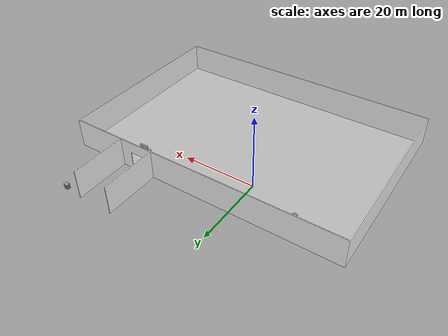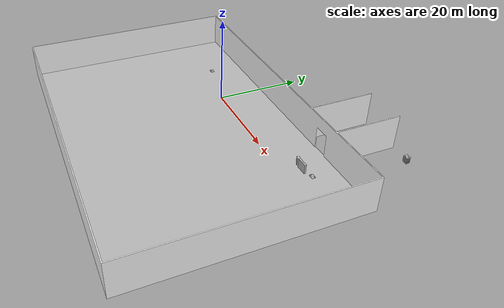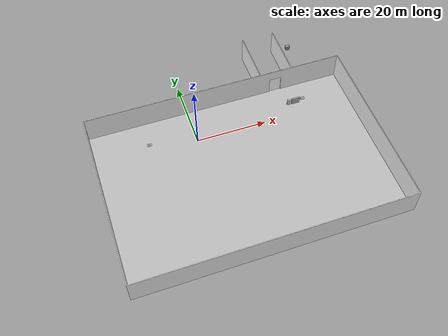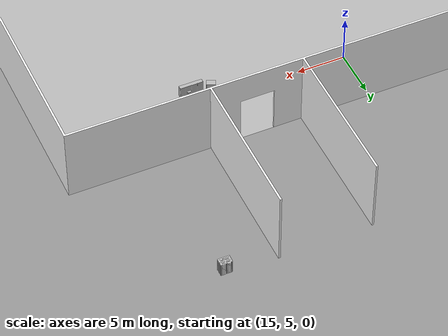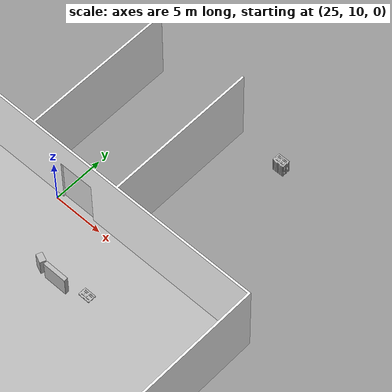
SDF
<sdf version="1.10">
 <world name="default">
  <gravity>0 0 -9.8000000000000007</gravity>
  <physics type="ode">
   <max_step_size>0.01</max_step_size>
   <real_time_update_rate>100</real_time_update_rate>
   <real_time_factor>1</real_time_factor>
  </physics>
  <plugin name="gz::sim::systems::Physics" filename="gz-sim-physics-system"/>
  <plugin name="gz::sim::systems::UserCommands" filename="gz-sim-user-commands-system"/>
  <plugin name="gz::sim::systems::SceneBroadcaster" filename="gz-sim-scene-broadcaster-system"/>
  <plugin name="gz::sim::systems::Sensors" filename="gz-sim-sensors-system">
   <render_engine>ogre2</render_engine>
  </plugin>
  <plugin name="gz::sim::systems::Imu" filename="gz-sim-imu-system"/>
  <plugin name="gz::sim::systems::Contact" filename="gz-sim-contact-system"/>
  <plugin name="gz::sim::systems::TriggeredPublisher" filename="gz-sim-triggered-publisher-system"/>
  <scene>
   <ambient>1 1 1 1</ambient>
   <background>0.300000012 0.699999988 0.899999976 1</background>
   <shadows>false</shadows>
   <grid>false</grid>
  </scene>
  <magnetic_field>5.5644999999999998e-06 2.2875799999999999e-05 -4.2388400000000002e-05</magnetic_field>
  <atmosphere type="adiabatic"/>
  <include>
   <static>1</static>
   <uri>model://concrete_ground</uri>
   <name>concrete_ground</name>
   <pose>8.8000000000000007 -14.4 0.00050000000000000001 0 0 0</pose>
  </include>
  <include>
   <static>1</static>
   <uri>model://factory</uri>
   <name>factory</name>
   <pose>1.3 -1.3999999999999999 0 0 0 0</pose>
  </include>
  <include>
   <static>1</static>
   <uri>model://electrical_box</uri>
   <name>electrical_box</name>
   <pose>31 4 0 0 0 3.1400000000000001</pose>
  </include>
  <include>
   <static>1</static>
   <uri>model://blue_cabinet</uri>
   <name>blue_cabinet</name>
   <pose>29 4.2599999999999998 0 0 0 -1.96</pose>
  </include>
  <include>
   <static>1</static>
   <uri>model://eur_pallet</uri>
   <name>pallet_group_pickup</name>
   <pose>-13.700000000000172 2.6000000000024257 -4.3715116473615661e-07 4.152909349755708e-08 2.958699848366306e-09 2.9219857872360464e-17</pose>
  </include>
  <include>
   <static>1</static>
   <uri>model://eur_pallet</uri>
   <name>pallet_group_dropoff</name>
   <pose>32.999999999999829 4.5000000000024256 -4.3715116469401709e-07 4.1529093391264352e-08 2.9586998560490375e-09 2.9114820965909643e-17</pose>
  </include>
  <include>
   <static>1</static>
   <uri>model://eur_pallet</uri>
   <name>pallet_stack2_n1</name>
   <pose>36.300000000000033 24.599999999999746 -3.6706068590536973e-06 4.1576641099852704e-07 2.9608989262484152e-08 6.5556212340355986e-16</pose>
  </include>
  <include>
   <static>1</static>
   <uri>model://eur_pallet</uri>
   <name>pallet_stack2_n2</name>
   <pose>36.300000004167991 24.5999999407865 0.14399041984560573 1.1648864492255313e-06 8.2993615811757163e-08 -6.0493878031625912e-11</pose>
  </include>
  <include>
   <static>1</static>
   <uri>model://eur_pallet</uri>
   <name>pallet_stack2_n3</name>
   <pose>36.300000015856746 24.59999977677268 0.28798544264464615 1.8281327184696251e-06 1.3023645235723331e-07 -5.1851002659399237e-11</pose>
  </include>
  <include>
   <static>1</static>
   <uri>model://eur_pallet</uri>
   <name>pallet_stack2_n4</name>
   <pose>36.300000033982933 24.59999952239902 0.43198018936065968 2.4130336791193994e-06 1.7190497546592542e-07 -4.3210224442971398e-11</pose>
  </include>
  <include>
   <static>1</static>
   <uri>model://eur_pallet</uri>
   <name>pallet_stack2_n5</name>
   <pose>36.300000057464835 24.599999192865855 0.57597624906531331 2.911325281084246e-06 2.0740315759753532e-07 -3.1400832557916565e-11</pose>
  </include>
  <include>
   <static>1</static>
   <uri>model://eur_pallet</uri>
   <name>pallet_stack2_n6</name>
   <pose>36.300000085191719 24.599998803807075 0.71997334672944946 3.3246275415267877e-06 2.3684749416394073e-07 -1.0319362736580056e-11</pose>
  </include>
  <include>
   <static>1</static>
   <uri>model://eur_pallet</uri>
   <name>pallet_stack2_n7</name>
   <pose>36.30000011604465 24.599998370843366 0.86397072005531539 3.6567051958537219e-06 2.6050533721739928e-07 7.9995338883992933e-12</pose>
  </include>
  <include>
   <static>1</static>
   <uri>model://eur_pallet</uri>
   <name>pallet_stack2_n8</name>
   <pose>36.300000148817993 24.599997910878887 1.0079690288686509 3.9046641297745717e-06 2.7817074753029887e-07 2.056759309082002e-11</pose>
  </include>
  <include>
   <static>1</static>
   <uri>model://eur_pallet</uri>
   <name>pallet_stack2_n9</name>
   <pose>36.300000182308196 24.599997440706929 1.1519674367542334 4.0714364742810299e-06 2.9005223052507442e-07 1.3840240703987145e-11</pose>
  </include>
  <include>
   <static>1</static>
   <uri>model://eur_pallet</uri>
   <name>pallet_stack2_n10</name>
   <pose>36.300000215257057 24.59999697800081 1.295966398199037 4.1547314714904098e-06 2.9598656179255095e-07 -9.9941771409685691e-12</pose>
  </include>
  <light name="sun" type="directional">
   <pose>0 0.10000000000000001 10 0 0 0</pose>
   <cast_shadows>false</cast_shadows>
   <intensity>1</intensity>
   <direction>0.10000000000000001 0.10000000000000001 -0.90000000000000002</direction>
   <diffuse>0.800000012 0.800000012 0.800000012 1</diffuse>
   <specular>0.200000003 0.200000003 0.200000003 1</specular>
   <attenuation>
    <range>1000</range>
    <linear>0.01</linear>
    <constant>0.90000000000000002</constant>
    <quadratic>0.001</quadratic>
   </attenuation>
   <spot><inner_angle>0</inner_angle><outer_angle>0</outer_angle><falloff>0</falloff></spot>
  </light>
 </world>
</sdf>

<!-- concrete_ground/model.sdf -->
<sdf version="1.7">
  <model name="concrete_ground" canonical_link="concrete_ground_link">
    <link name="concrete_ground">
      <visual name="visual">
        <pose>0 0 0 1.5708 0 0</pose>
        <geometry>
          <mesh>
            <uri>model://concrete_ground/meshes/concrete_ground.obj</uri>
            <scale>1 1 1</scale>
          </mesh>
        </geometry>
      </visual>
    </link>
  </model>
</sdf>

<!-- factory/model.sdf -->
<sdf version="1.8">
  <model name="factory">
    <plugin filename="gz-sim-label-system" name="gz::sim::systems::Label">
      <label>2</label>
    </plugin>
    <static>true</static>
    <link name="building">
      <visual name="visual">
        <geometry>
          <mesh>
            <uri>model://factory/meshes/factory_with_entrence.dae</uri>
          </mesh>
        </geometry>
      </visual>
      <collision name="collision">
        <geometry>
          <mesh>
            <uri>model://factory/meshes/factory_with_entrence.dae</uri>
          </mesh>
        </geometry>
      </collision>

    </link>
    <plugin name="gz::sim::systems::Label" filename="gz-sim-label-system">
      <label>2</label>
    </plugin>
  </model>
</sdf>

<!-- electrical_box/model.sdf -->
<sdf version="1.7">
  <model name="electrical_box" canonical_link="electrical_box_link">
    <link name="electrical_box_link">
      <visual name="visual">
        <pose>0 0 0 1.5708 0 0</pose>
        <geometry>
          <mesh>
            <uri>model://electrical_box/meshes/electrical_box.obj</uri>
            <scale>1 1 1</scale>
          </mesh>
        </geometry>
      </visual>

      <collision name="collision">
        <pose>0 0 0 1.5708 0 0</pose>
        <geometry>
          <mesh>
            <uri>model://electrical_box/meshes/electrical_box.obj</uri>
            <scale>1 1 1</scale>
          </mesh>
        </geometry>
      </collision>
    </link>
  </model>
</sdf>

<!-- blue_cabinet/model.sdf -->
<sdf version="1.7">
  <model name="blue_cabinet" canonical_link="blue_cabinet_link">
    <link name="blue_cabinet_link">
      <visual name="visual">
        <pose>0 0 0 1.5708 0 0</pose>
        <geometry>
          <mesh>
            <uri>model://blue_cabinet/meshes/blue_cabinet.obj</uri>
            <scale>1 1 1</scale>
          </mesh>
        </geometry>
      </visual>

      <collision name="collision">
        <pose>0 0 0 1.5708 0 0</pose>
        <geometry>
          <mesh>
            <uri>model://blue_cabinet/meshes/blue_cabinet.obj</uri>
            <scale>1 1 1</scale>
          </mesh>
        </geometry>
      </collision>
    </link>
  </model>
</sdf>

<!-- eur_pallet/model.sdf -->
<sdf version="1.9">
<model name="eur_pallet" canonical_link="node0_link">
  <link name="node0_link">
    <visual name="node0">
      <pose>0 0 0 0 0 0</pose>
      <geometry>
        <mesh>
          <uri>model://eur_pallet/meshes/textured_pallet.dae</uri>
          <scale>1.00000 1.00000 1.00000</scale>
        </mesh>
      </geometry>
    </visual>
  </link>

  <link name="collision_holder_1">
    <inertial>
      <inertia>
        <ixx>0.006</ixx>
        <ixy>0</ixy>
        <ixz>0</ixz>
        <iyy>0.435</iyy>
        <iyz>0</iyz>
        <izz>0.435</izz>
      </inertia>
      <pose>0.6 0.05 0.05 0 0 0</pose>
      <mass>3.6</mass>
    </inertial>
    <collision name="collision_holder_1">
      <pose>0.6 0.05 0.05 0.0 0.0 0.0</pose>
      <geometry>
        <box>
          <size>1.2 0.1 0.1</size>
        </box>
      </geometry>
      <surface>
      <friction>
        <ode>
          <mu>1</mu>
          <mu2>1</mu2>
          <slip1>0</slip1>
          <slip2>0</slip2>
        </ode>
      </friction>
      <contact>
        <ode>
          <soft_cfm>1e-5</soft_cfm>
          <soft_erp>0.2</soft_erp>
          <kp>1e+13</kp>
          <kd>1</kd>
          <max_vel>0.01</max_vel>
          <min_depth>0</min_depth>
        </ode>
      </contact>
      </surface>
    </collision>
  </link>

  <link name="collision_holder_2">
    <inertial>
      <inertia>
        <ixx>0.013496</ixx>
        <ixy>0</ixy>
        <ixz>0</ixz>
        <iyy>0.6308</iyy>
        <iyz>0</iyz>
        <izz>0.6355</izz>
      </inertia>
      <pose>0.6 0.4 0.05 0 0 0</pose>
      <mass>5.22</mass>
    </inertial>
    <collision name="collision_holder_2">
      <pose>0.6 0.4 0.05 0 0 0</pose>
      <geometry>
        <box>
          <size>1.2 0.145 0.1</size>
        </box>
      </geometry>
      <surface>
      <friction>
        <ode>
          <mu>1</mu>
          <mu2>1</mu2>
          <slip1>0</slip1>
          <slip2>0</slip2>
        </ode>
      </friction>
      <contact>
        <ode>
          <soft_cfm>1e-5</soft_cfm>
          <soft_erp>0.2</soft_erp>
          <kp>1e+13</kp>
          <kd>1</kd>
          <max_vel>0.01</max_vel>
          <min_depth>0</min_depth>
        </ode>
      </contact>
      </surface>

    </collision>
  </link>

  <link name="collision_holder_3">
    <inertial>
      <inertia>
        <ixx>0.006</ixx>
        <ixy>0</ixy>
        <ixz>0</ixz>
        <iyy>0.435</iyy>
        <iyz>0</iyz>
        <izz>0.435</izz>
      </inertia>
      <pose>0.6 0.75 0.05 0 0 0</pose>
      <mass>3.6</mass>
    </inertial>
    <collision name="collision_holder_3">
      <pose>0.6 0.75 0.05 0 0 0</pose>
      <geometry>
        <box>
          <size>1.2 0.1 0.1</size>
        </box>
      </geometry>
      <surface>
      <friction>
        <ode>
          <mu>1</mu>
          <mu2>1</mu2>
          <slip1>0</slip1>
          <slip2>0</slip2>
        </ode>
      </friction>
      <contact>
        <ode>
          <soft_cfm>1e-5</soft_cfm>
          <soft_erp>0.2</soft_erp>
          <kp>1e+13</kp>
          <kd>1</kd>
          <max_vel>0.01</max_vel>
          <min_depth>0</min_depth>
        </ode>
      </contact>
      </surface>

    </collision>
  </link>

  <link name="collision_holder_surface">
    <inertial>
      <inertia>
        <ixx>0.6779</ixx>
        <ixy>0</ixy>
        <ixz>0</ixz>
        <iyy>1.5227</iyy>
        <iyz>0</iyz>
        <izz>2.1965</izz>
      </inertia>
      <pose>0.6 0.4 0.122 0 0 0</pose>
      <mass>12.672</mass>
    </inertial>
    <collision name="collision_holder_surface">
      <pose>0.6 0.4 0.122 0 0 0</pose>
      <geometry>
        <box>
          <size>1.2 0.8 0.044</size>
        </box>
      </geometry>
      <surface>
      <friction>
        <ode>
          <mu>1</mu>
          <mu2>1</mu2>
          <slip1>0</slip1>
          <slip2>0</slip2>
        </ode>
      </friction>
      <contact>
        <ode>
          <soft_cfm>1e-5</soft_cfm>
          <soft_erp>0.2</soft_erp>
          <kp>1e+13</kp>
          <kd>1</kd>
          <max_vel>0.01</max_vel>
          <min_depth>0</min_depth>
        </ode>
      </contact>
      </surface>

    </collision>
  </link>

  <joint name="fixed_joint_2" type="fixed">
    <parent>node0_link</parent>
    <child>collision_holder_2</child>
  </joint>

  <joint name="fixed_joint_3" type="fixed">
    <parent>node0_link</parent>
    <child>collision_holder_3</child>
  </joint>

  <joint name="fixed_joint_1" type="fixed">
    <parent>node0_link</parent>
    <child>collision_holder_1</child>
  </joint>

  <joint name="fixed_joint_surface" type="fixed">
    <parent>node0_link</parent>
    <child>collision_holder_surface</child>
  </joint>

  <plugin filename="gz-sim-label-system" name="gz::sim::systems::Label">
    <label>3</label>
  </plugin>

</model>
</sdf>
